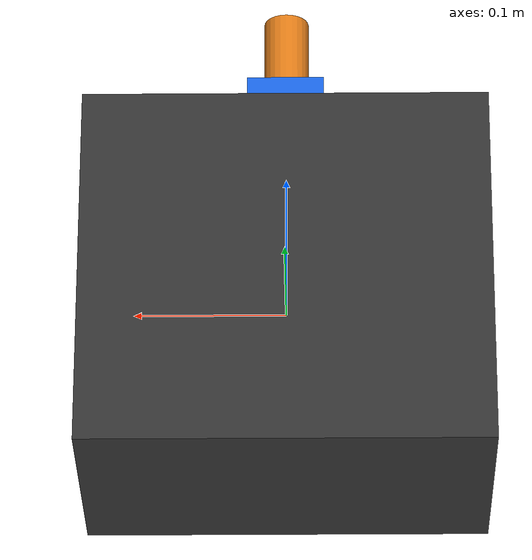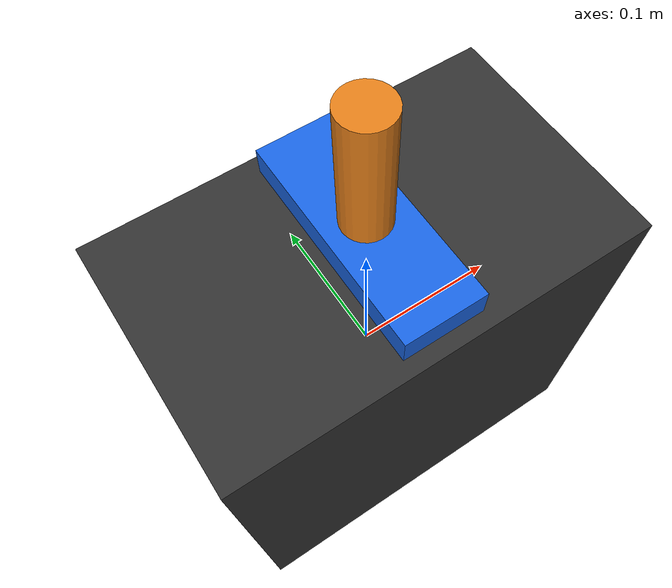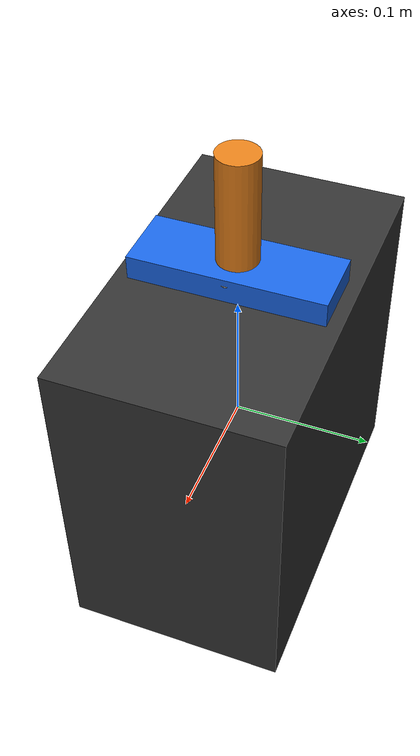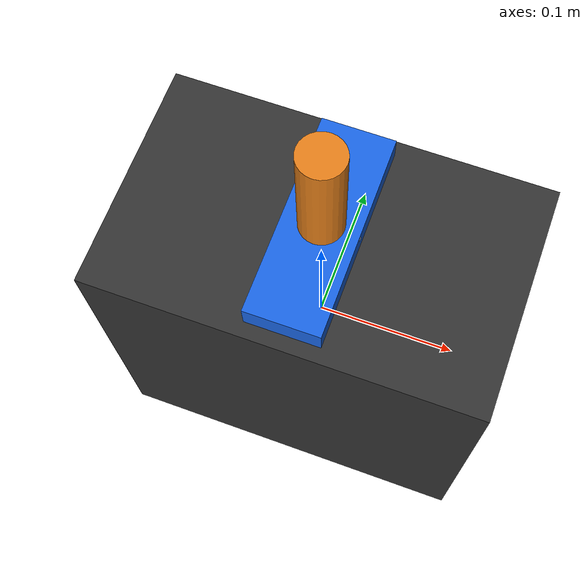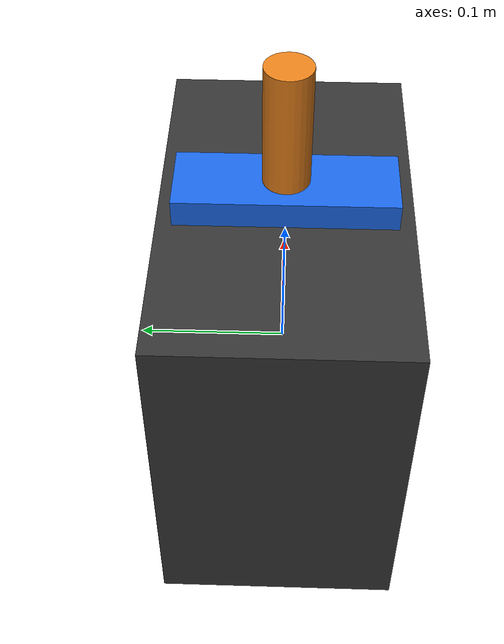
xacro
<?xml version="1.0"?>
<robot name="welding_carriage" xmlns:xacro="http://www.ros.org/wiki/xacro">

  <!-- Параметры из паспорта -->
  <xacro:property name="body_l" value="0.265"/>
  <xacro:property name="body_w" value="0.160"/>
  <xacro:property name="body_h" value="0.245"/>
  <xacro:property name="wheel_r" value="0.025"/>

  <!-- Базовое звено -->
  <link name="base_link">
    <visual>
      <geometry><box size="${body_l} ${body_w} ${body_h}"/></geometry>
      <material name="dark_gray"><color rgba="0.2 0.2 0.2 1"/></material>
    </visual>
    <collision>
      <geometry><box size="${body_l} ${body_w} ${body_h}"/></geometry>
    </collision>
    <inertial>
      <mass value="8.0"/>
      <inertia ixx="0.05" ixy="0" ixz="0" iyy="0.05" iyz="0" izz="0.05"/>
    </inertial>
  </link>

  <!-- Каретка (движение вдоль X) -->
  <link name="carriage_link">
    <visual>
      <geometry><box size="0.05 0.14 0.02"/></geometry>
      <material name="blue"><color rgba="0.1 0.4 0.9 1"/></material>
    </visual>
  </link>
  <joint name="carriage_joint" type="prismatic">
    <parent link="base_link"/>
    <child link="carriage_link"/>
    <axis xyz="1 0 0"/>
    <limit lower="0" upper="5.0" effort="50" velocity="0.05"/>
    <origin xyz="0 0 0.13"/>
  </joint>

  <!-- Осциллятор (вращение вокруг Z) -->
  <link name="oscillator_link">
    <visual>
      <geometry><cylinder radius="0.015" length="0.08"/></geometry>
      <material name="orange"><color rgba="0.9 0.5 0.1 1"/></material>
    </visual>
  </link>
  <joint name="oscillator_joint" type="revolute">
    <parent link="carriage_link"/>
    <child link="oscillator_link"/>
    <axis xyz="0 0 1"/>
    <limit lower="-0.297" upper="0.297" effort="10" velocity="0.35"/>
    <origin xyz="0 0 0.05"/>
  </joint>

  <!-- Горелка -->
  <link name="torch_link">
    <visual>
      <geometry><cylinder radius="0.008" length="0.12"/></geometry>
      <material name="silver"><color rgba="0.8 0.8 0.8 1"/></material>
    </visual>
  </link>
  <joint name="torch_joint" type="fixed">
    <parent link="oscillator_link"/>
    <child link="torch_link"/>
    <origin xyz="0 0 -0.10" rpy="0 0.3 0"/>
  </joint>

</robot>
